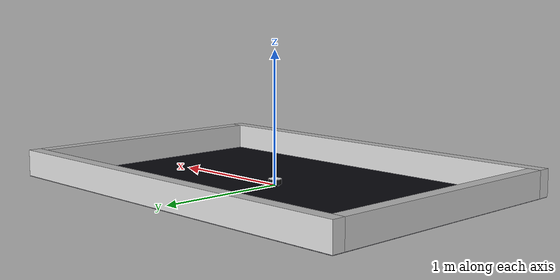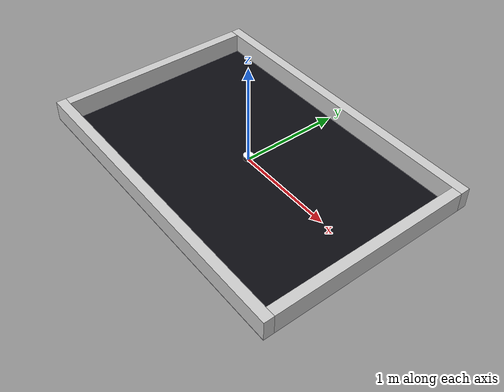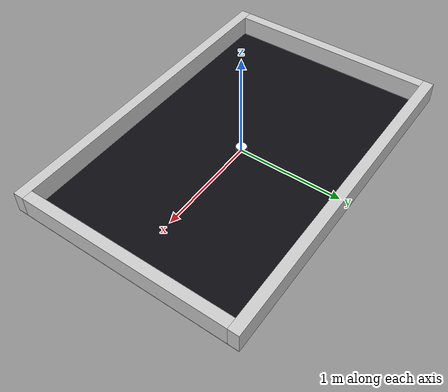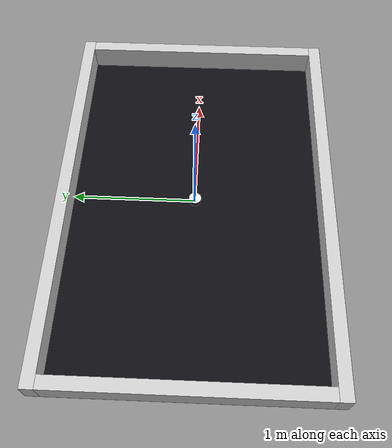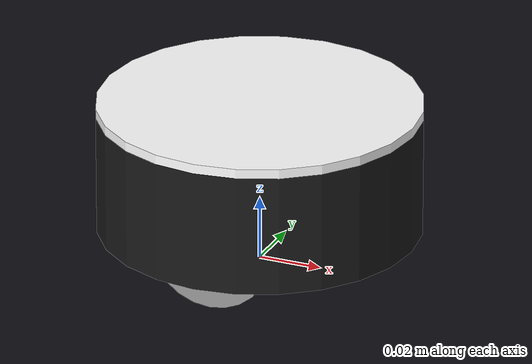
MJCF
<mujoco model="arena">
<include file="agent.xml" />
<visual>
		<headlight ambient="0.5 0.5 0.5" />
		<quality shadowsize="4096" />
	</visual>
	<asset>
	<texture
            name="gym_floor"
            type="2d"
            builtin="checker"
            width="512"
            height="512"
            rgb1="0.2 0.2 0.25"
            rgb2="0.25 0.25 0.3"
        />
        <material
            name="gym_floor"
            texture="gym_floor"
            texrepeat="8 8"
            reflectance="0.1"
            rgba="0.2 0.2 0.25 1"
        />
        <material name="wall" rgba="0.8 0.8 0.8 1" />
	</asset>
	<default>
		<geom condim="3" friction="0.8 0.005 0.0001" />
		<joint damping="0.0005" armature="0.0001" />
		<motor ctrlrange="-1 1" ctrllimited="true" />
	</default>

	<worldbody>
    <light pos="0 0 3" dir="0 0 -1" directional="false" castshadow="true" />
    <light pos="1.5 1.5 2" dir="-1 -1 -1" directional="false" />
    <geom
            name="floor"
            type="plane"
            size="1.6 1.1 0.01"
            material="gym_floor"
            friction="1.1 0.005 0.0001"
        />
    <geom
            name="wall_north"
            type="box"
            pos="0 1.05 0.1"
            size="1.6 0.05 0.1"
            material="wall"
        />
    <geom
            name="wall_south"
            type="box"
            pos="0 -1.05 0.1"
            size="1.6 0.05 0.1"
            material="wall"
        />
    <geom
            name="wall_east"
            type="box"
            pos="1.55 0 0.1"
            size="0.05 1.0 0.1"
            material="wall"
        />
    <geom
            name="wall_west"
            type="box"
            pos="-1.55 0 0.1"
            size="0.05 1.0 0.1"
            material="wall"
        />
</worldbody>
</mujoco>

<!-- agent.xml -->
<mujoco model="agent">
	<asset>
		<material name="chassis_base" rgba="0.1 0.1 0.1 1" />
		<material name="chassis_top" rgba="1.0 1.0 1.0 1" />
		<material name="wheel" rgba="0.6 0.6 0.6 1" />
		<material name="caster" rgba="0.6 0.6 0.6 1" />
	</asset>
	<worldbody>
		<body name="agent" pos="0 0 0.0299">
		    <freejoint name="agent_root" />
		    <inertial
                pos="-0.0148 0 -0.009"
                diaginertia="0.000112 0.000112 0.000188"
                mass="0.15"
            />
			<geom
                name="chassis_base"
                type="cylinder"
                size="0.05 0.019"
                material="chassis_base"
            />
			<geom
                name="chassis_top"
                type="cylinder"
                pos="0 0 0.0205"
                size="0.05 0.0015"
                material="chassis_top"
            />

            <body name="left_wheel" pos="0 0.037123 -0.0099">
                <joint name="left_wheel_joint" type="hinge" axis="0 1 0" />
                <geom
                    name="left_wheel_geom"
                    type="cylinder"
                    size="0.020 0.0015"
                    euler="90 0 0"
                    mass="0.00425"
                    material="wheel"
                    friction="1.0 0.005 0.0001"
                />
            </body>

            <body name="right_wheel" pos="0 -0.037123 -0.0099">
                <joint name="right_wheel_joint" type="hinge" axis="0 1 0" />
                <geom
                    name="right_wheel_geom"
                    type="cylinder"
                    size="0.020 0.0015"
                    euler="90 0 0"
                    mass="0.00425"
                    material="wheel"
                    friction="1.0 0.005 0.0001"
                />
            </body>

            <body name="caster" pos="-0.037 0 -0.0251">
                <geom
                    name="caster_housing"
                    type="box"
                    size="0.006 0.006 0.004"
                    pos="0 0 0.004"
                    mass="0.004"
                    material="chassis_base"
                />

                <body name="caster_ball" pos="0 0 0">
                    <joint
                        name="caster_ball_joint"
                        type="ball"
                        damping="0.0001"
                    />
                    <geom
                        name="caster_ball_geom"
                        type="sphere"
                        size="0.0048"
                        mass="0.002"
                        material="caster"
                        friction="0.3 0.005 0.0001"
                    />
                </body>
            </body>
		</body>
	</worldbody>
	<actuator>
	<motor
            name="left_motor"
            joint="left_wheel_joint"
            gear="0.12"
            ctrlrange="-1 1"
            ctrllimited="true"
        />
    <motor
            name="right_motor"
            joint="right_wheel_joint"
            gear="0.15"
            ctrlrange="-1 1"
            ctrllimited="true"
        />
    </actuator>
    <sensor>
        <framepos name="agent_pos" objtype="body" objname="agent" />
        <framequat name="agent_quat" objtype="body" objname="agent" />
        <framelinvel name="agent_vel" objtype="body" objname="agent" />
        <frameangvel name="agent_angvel" objtype="body" objname="agent" />
    </sensor>
</mujoco>
